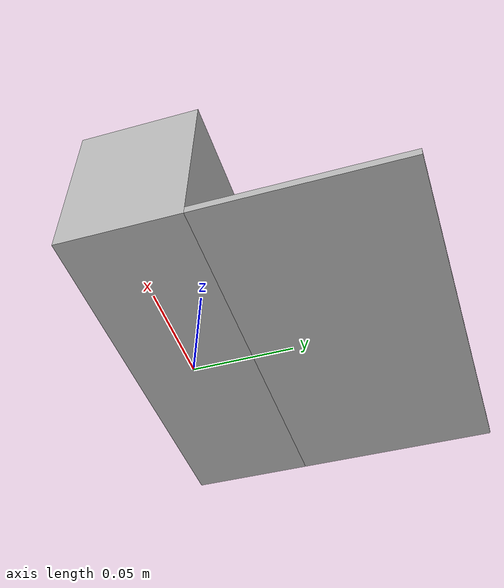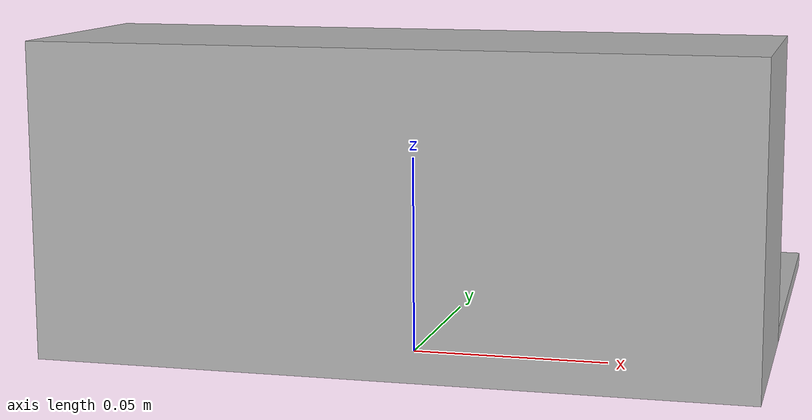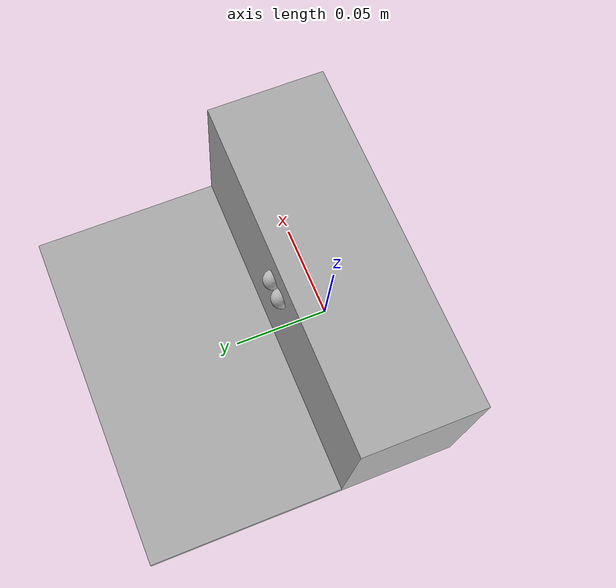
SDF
<?xml version="1.0" ?>
<sdf version="1.5">
  <model name="Dock">
    <link name="base">
      <pose>0 0 0 0 0 0</pose>
      <inertial>
        <pose>0 0 0 0 0 0</pose>
        <inertia>
          <ixx>0.01</ixx>
          <ixy>0.01</ixy>
          <ixz>0.01</ixz>
          <iyy>0.01</iyy>
          <iyz>0.01</iyz>
          <izz>0.01</izz>
        </inertia>
        <mass>1</mass>
      </inertial>
      <collision name="base_collision">
        <pose>0 0 0.04 0 0 0</pose>
        <geometry>
          <box>
            <size>0.18 0.06 0.08</size>
          </box>
        </geometry>
      </collision>
      <visual name="base_visual">
        <pose>0 0 0.04 0 0 0</pose>
        <geometry>
          <box>
            <size>0.18 0.06 0.08</size>
          </box>
        </geometry>
      </visual>
      <collision name="bottom_collision">
        <pose>0 0.08 0.002 0 0 0</pose>
        <geometry>
          <box>
            <size>0.18 0.10 0.004</size>
          </box>
        </geometry>
      </collision>
      <visual name="bottom_visual">
        <pose>0 0.08 0.002 0 0 0</pose>
        <geometry>
          <box>
            <size>0.18 0.10 0.004</size>
          </box>
        </geometry>
      </visual>
    </link>
    <link name="camera_left">
      <pose>0.005 0.03 0.06 0 0 1.57</pose>
      <visual name="cl">
        <geometry>
          <sphere>
            <radius>.005</radius>
          </sphere>
        </geometry>
      </visual>
      <sensor name="ir_left" type="camera">
        <camera>
          <near>0.02</near>
          <far>2.5</far>
          <image>
            <width>20</width>
            <height>20</height>
          </image>
          <horizontal_fov>0.02</horizontal_fov>
          <aspect_ratio>1</aspect_ratio>
        </camera>
        <visualize>false</visualize>
        <always_on>true</always_on>
        <update_rate>10</update_rate>
        <topic>dockir/A3</topic>
      </sensor>
    </link>
    <joint name="left" type="fixed">
      <parent>base</parent>
      <child>camera_left</child>
      <pose>0 0 0 0 0 0</pose>
    </joint>
    <link name="camera_right">
      <pose>-0.005 0.03 0.06 0 0 1.57</pose>
      <visual name="cr">
        <geometry>
          <sphere>
            <radius>.005</radius>
          </sphere>
        </geometry>
      </visual>
      <sensor name="ir_right" type="camera">
        <camera>
          <near>0.02</near>
          <far>2.5</far>
          <horizontal_fov>0.02</horizontal_fov>
          <aspect_ratio>1</aspect_ratio>
          <image>
            <width>20</width>
            <height>20</height>
          </image>
        </camera>
        <visualize>false</visualize>
        <always_on>true</always_on>
        <update_rate>10</update_rate>
        <topic>dockir/A4</topic>
      </sensor>
    </link>
    <joint name="right" type="fixed">
      <parent>base</parent>
      <child>camera_right</child>
      <pose>0 0 0 0 0 0</pose>
    </joint>
  </model>
</sdf>
